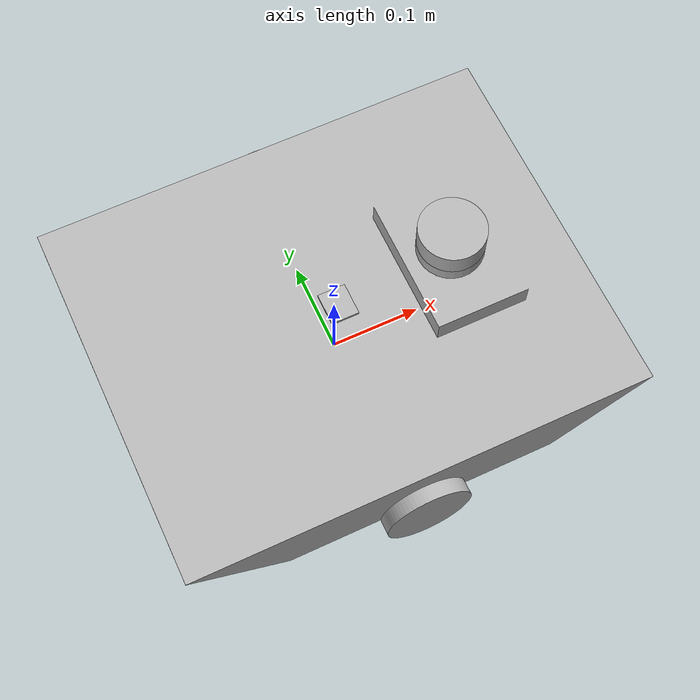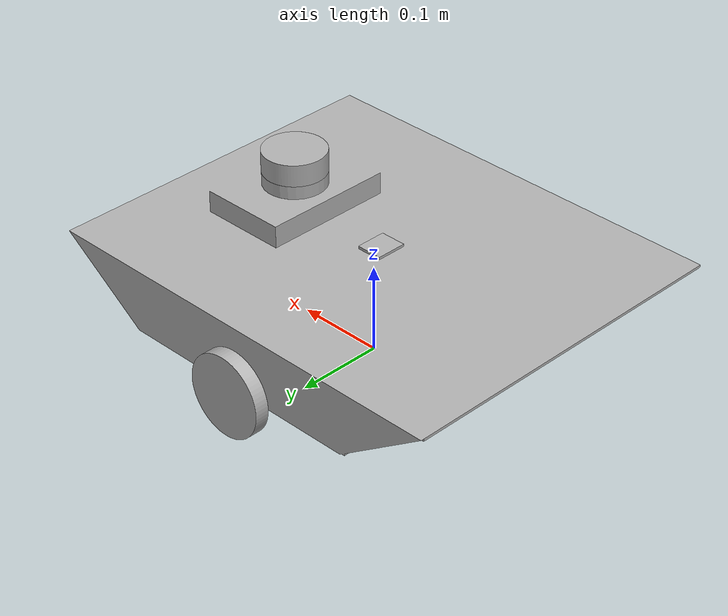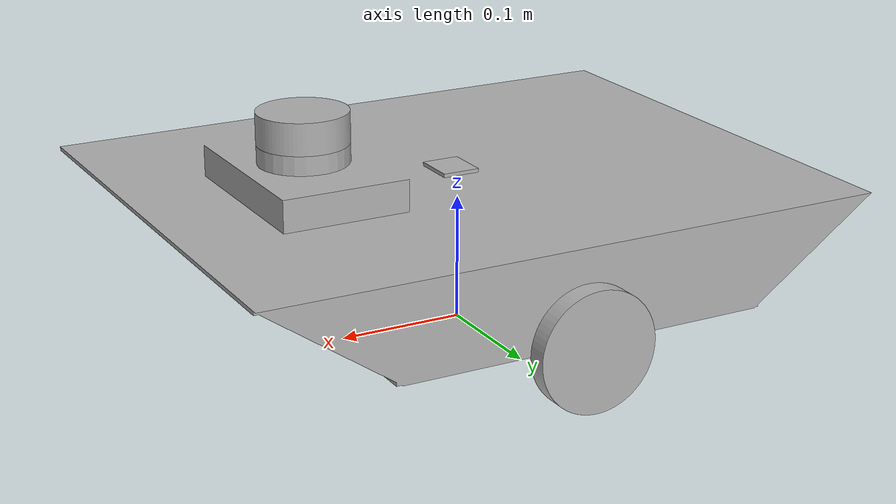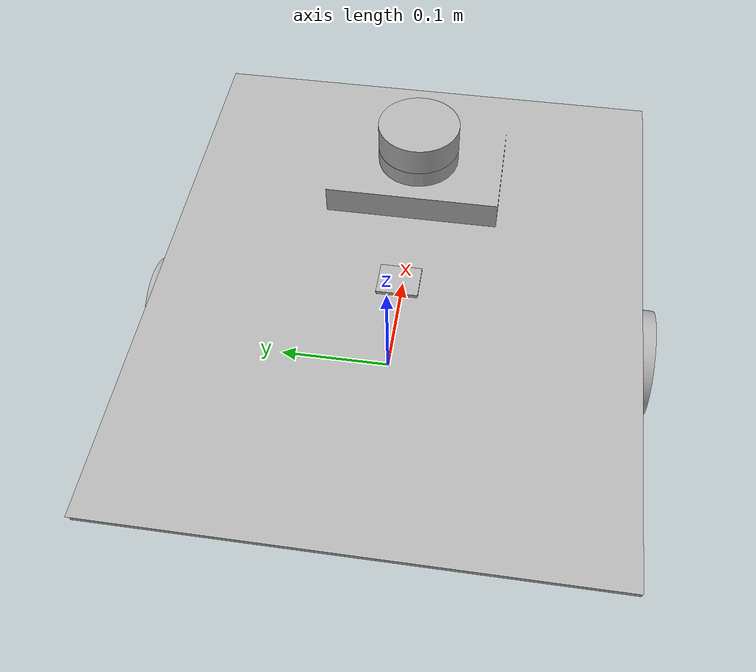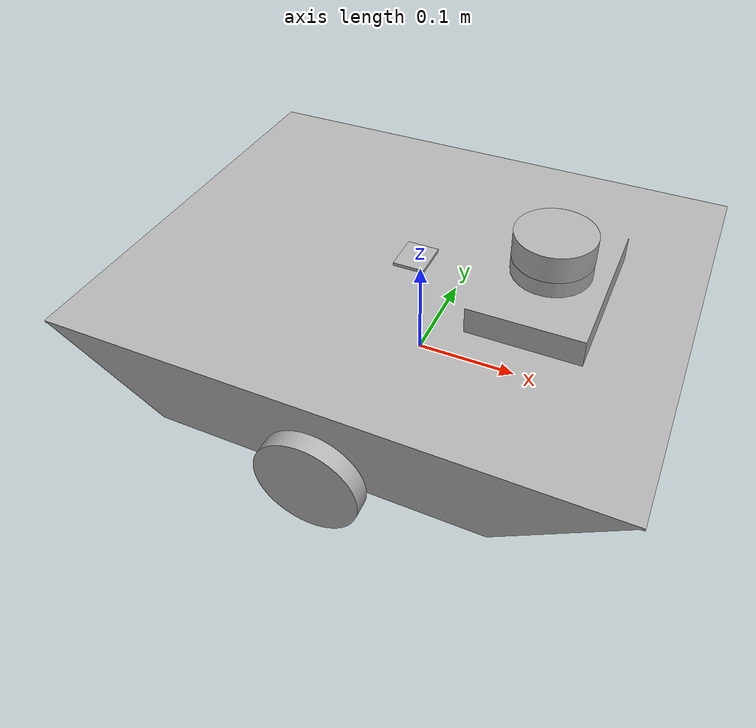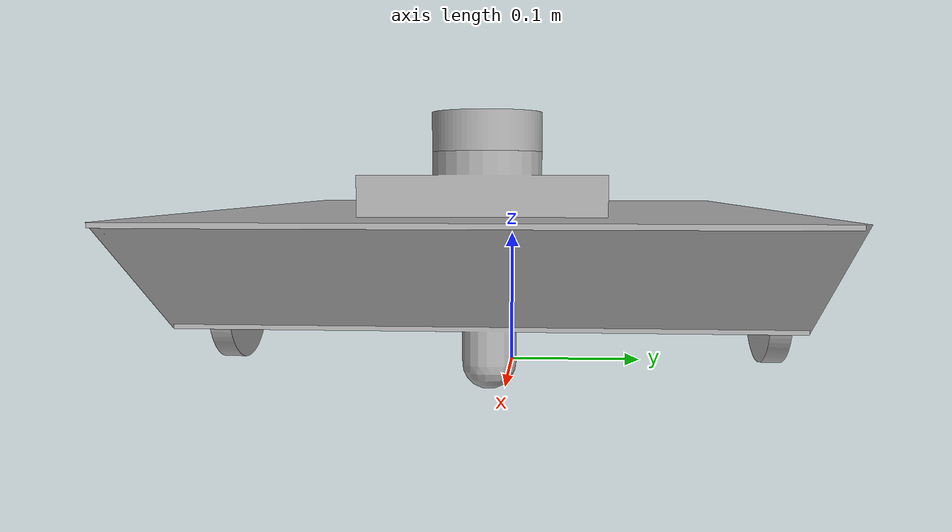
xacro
<?xml version="1.0" ?>
<robot name="urdf-model-v2" xmlns:xacro="http://www.ros.org/wiki/xacro">

<xacro:include filename="$(find urdf-model-v2_description)/urdf/materials.xacro" />
<xacro:include filename="$(find urdf-model-v2_description)/urdf/urdf-model-v2.trans" />
<xacro:include filename="$(find urdf-model-v2_description)/urdf/urdf-model-v2.gazebo" />
<link name="base_link">
  <inertial>
    <origin rpy="0 0 0" xyz="0.02750610135511024 -0.01565851618949415 0.09680298938914317"/>
    <mass value="2.108012963089235"/>
    <inertia ixx="0.031032" ixy="-0.000398" ixz="-0.002171" iyy="0.040587" iyz="-0.000128" izz="0.066435"/>
  </inertial>
  <visual>
    <origin rpy="0 0 0" xyz="0 0 0"/>
    <geometry>
      <mesh filename="package://urdf-model-v2_description/meshes/base_link.stl" scale="0.001 0.001 0.001"/>
    </geometry>
    <material name="silver"/>
  </visual>
  <collision>
    <origin rpy="0 0 0" xyz="0 0 0"/>
    <geometry>
      <mesh filename="package://urdf-model-v2_description/meshes/base_link.stl" scale="0.001 0.001 0.001"/>
    </geometry>
  </collision>
</link>

<link name="left_wheel_1">
  <inertial>
    <origin rpy="0 0 0" xyz="-3.138019803656142e-17 0.00799999999999984 3.885780586188048e-16"/>
    <mass value="0.10107848168254115"/>
    <inertia ixx="5.7e-05" ixy="0.0" ixz="0.0" iyy="0.000109" iyz="0.0" izz="5.7e-05"/>
  </inertial>
  <visual>
    <origin rpy="0 0 0" xyz="0.0 -0.1915 -0.0465"/>
    <geometry>
      <mesh filename="package://urdf-model-v2_description/meshes/left_wheel_1.stl" scale="0.001 0.001 0.001"/>
    </geometry>
    <material name="silver"/>
  </visual>
  <collision>
    <origin rpy="0 0 0" xyz="0.0 -0.1915 -0.0465"/>
    <geometry>
      <mesh filename="package://urdf-model-v2_description/meshes/left_wheel_1.stl" scale="0.001 0.001 0.001"/>
    </geometry>
  </collision>
</link>

<link name="right_wheel_1">
  <inertial>
    <origin rpy="0 0 0" xyz="2.1077518622958504e-07 -0.008000000000000257 3.2612801348363973e-16"/>
    <mass value="0.10107848168254108"/>
    <inertia ixx="5.7e-05" ixy="0.0" ixz="0.0" iyy="0.000109" iyz="0.0" izz="5.7e-05"/>
  </inertial>
  <visual>
    <origin rpy="0 0 0" xyz="-3e-05 0.2125 -0.0465"/>
    <geometry>
      <mesh filename="package://urdf-model-v2_description/meshes/right_wheel_1.stl" scale="0.001 0.001 0.001"/>
    </geometry>
    <material name="silver"/>
  </visual>
  <collision>
    <origin rpy="0 0 0" xyz="-3e-05 0.2125 -0.0465"/>
    <geometry>
      <mesh filename="package://urdf-model-v2_description/meshes/right_wheel_1.stl" scale="0.001 0.001 0.001"/>
    </geometry>
  </collision>
</link>

<link name="lidar_1">
  <inertial>
    <origin rpy="0 0 0" xyz="-4.902873257939255e-07 -6.245004513516506e-17 0.012500000000000039"/>
    <mass value="0.10406525665016182"/>
    <inertia ixx="3.8e-05" ixy="-0.0" ixz="0.0" iyy="3.8e-05" iyz="-0.0" izz="6.5e-05"/>
  </inertial>
  <visual>
    <origin rpy="0 0 0" xyz="-0.125032 0.01 -0.1595"/>
    <geometry>
      <mesh filename="package://urdf-model-v2_description/meshes/lidar_1.stl" scale="0.001 0.001 0.001"/>
    </geometry>
    <material name="silver"/>
  </visual>
  <collision>
    <origin rpy="0 0 0" xyz="-0.125032 0.01 -0.1595"/>
    <geometry>
      <mesh filename="package://urdf-model-v2_description/meshes/lidar_1.stl" scale="0.001 0.001 0.001"/>
    </geometry>
  </collision>
</link>

<link name="imu_1">
  <inertial>
    <origin rpy="0 0 0" xyz="-2.871335190220503e-07 -2.203098814490545e-16 0.001500000000000043"/>
    <mass value="0.0033390000000000078"/>
    <inertia ixx="0.0" ixy="0.0" ixz="-0.0" iyy="0.0" iyz="-0.0" izz="1e-06"/>
  </inertial>
  <visual>
    <origin rpy="0 0 0" xyz="-4.7e-05 0.0105 -0.1195"/>
    <geometry>
      <mesh filename="package://urdf-model-v2_description/meshes/imu_1.stl" scale="0.001 0.001 0.001"/>
    </geometry>
    <material name="silver"/>
  </visual>
  <collision>
    <origin rpy="0 0 0" xyz="-4.7e-05 0.0105 -0.1195"/>
    <geometry>
      <mesh filename="package://urdf-model-v2_description/meshes/imu_1.stl" scale="0.001 0.001 0.001"/>
    </geometry>
  </collision>
</link>

<joint name="Rev10" type="continuous">
  <origin rpy="0 0 0" xyz="0.0 0.1915 0.0465"/>
  <parent link="base_link"/>
  <child link="left_wheel_1"/>
  <axis xyz="-0.0 1.0 0.0"/>
</joint>

<joint name="Rev11" type="continuous">
  <origin rpy="0 0 0" xyz="3e-05 -0.2125 0.0465"/>
  <parent link="base_link"/>
  <child link="right_wheel_1"/>
  <axis xyz="0.0 1.0 -0.0"/>
</joint>

<joint name="Rigid12" type="fixed">
  <origin rpy="0 0 0" xyz="0.125032 -0.01 0.1595"/>
  <parent link="base_link"/>
  <child link="lidar_1"/>
</joint>

<joint name="Rigid13" type="fixed">
  <origin rpy="0 0 0" xyz="4.7e-05 -0.0105 0.1195"/>
  <parent link="base_link"/>
  <child link="imu_1"/>
</joint>

</robot>

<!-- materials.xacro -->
<robot name="urdf-model-v2" xmlns:xacro="http://www.ros.org/wiki/xacro" >

<material name="silver">
  <color rgba="0.700 0.700 0.700 1.000"/>
</material>

</robot>

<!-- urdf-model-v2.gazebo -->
<robot name="urdf-model-v2" xmlns:xacro="http://www.ros.org/wiki/xacro" >

<xacro:property name="body_color" value="Gazebo/Silver" />

<gazebo>
  <plugin filename="libgazebo_ros_control.so" name="control"/>
</gazebo>
<gazebo reference="base_link">
  <material>${body_color}</material>
  <mu1>0.2</mu1>
  <mu2>0.2</mu2>
  <selfCollide>true</selfCollide>
  <gravity>true</gravity>
</gazebo>

<gazebo reference="left_wheel_1">
  <material>${body_color}</material>
  <mu1>1500</mu1>
  <mu2>1500</mu2>
  <selfCollide>true</selfCollide>
</gazebo>

<gazebo reference="right_wheel_1">
  <material>${body_color}</material>
  <mu1>1500</mu1>
  <mu2>1500</mu2>
  <selfCollide>true</selfCollide>
</gazebo>

<gazebo reference="lidar_1">
  <material>${body_color}</material>
  <mu1>0.2</mu1>
  <mu2>0.2</mu2>
  <selfCollide>true</selfCollide>
</gazebo>

<gazebo reference="imu_1">
  <material>${body_color}</material>
  <mu1>0.2</mu1>
  <mu2>0.2</mu2>
  <selfCollide>true</selfCollide>
</gazebo>

<gazebo>
  <plugin name="differential_drive_controller" filename="libgazebo_ros_diff_drive.so">

    <!-- Plugin update rate in Hz -->
    <updateRate>$100</updateRate>

    <!-- Name of left joint, defaults to `left_joint` -->
    <leftJoint>Rev10</leftJoint>

    <!-- Name of right joint, defaults to `right_joint` -->
    <rightJoint>Rev11</rightJoint>

    <!-- The distance from the center of one wheel to the other, in meters, defaults to 0.34 m -->
    <wheelSeparation>0.404</wheelSeparation>

    <!-- Diameter of the wheels, in meters, defaults to 0.15 m -->
    <wheelDiameter>0.093</wheelDiameter>

    <!-- Wheel acceleration, in rad/s^2, defaults to 0.0 rad/s^2 -->
    <wheelAcceleration>1.0</wheelAcceleration>

    <!-- Maximum torque which the wheels can produce, in Nm, defaults to 5 Nm -->
    <wheelTorque>50</wheelTorque>

    <!-- Topic to receive geometry_msgs/Twist message commands, defaults to `cmd_vel` -->
    <commandTopic>cmd_vel</commandTopic>

    <!-- Topic to publish nav_msgs/Odometry messages, defaults to `odom` -->
    <odometryTopic>odom</odometryTopic>

    <!-- Odometry frame, defaults to `odom` -->
    <odometryFrame>nav</odometryFrame>

    <!-- Robot frame to calculate odometry from, defaults to `base_footprint` -->
    <robotBaseFrame>base_footprint</robotBaseFrame>

    <!-- Odometry source, 0 for ENCODER, 1 for WORLD, defaults to WORLD -->
    <odometrySource>1</odometrySource>

    <!-- Set to true to publish transforms for the wheel links, defaults to false -->
    <publishWheelTF>true</publishWheelTF>

    <!-- Set to true to publish transforms for the odometry, defaults to true -->
    <publishOdom>true</publishOdom>

    <!-- Set to true to publish sensor_msgs/JointState on /joint_states for the wheel joints, defaults to false -->
    <publishWheelJointState>true</publishWheelJointState>

    <!-- Set to true to swap right and left wheels, defaults to true -->
    <legacyMode>true</legacyMode>
  </plugin>
</gazebo>

 <!-- hokuyo -->
  <gazebo reference="lidar_1">
    <sensor type="ray" name="head_hokuyo_sensor">
      <pose>0.2245 0.0 0.2 0 0 0</pose>
      <visualize>false</visualize>
      <update_rate>60</update_rate>
      <ray>
        <scan>
          <horizontal>
            <samples>720</samples>
            <resolution>1</resolution>
            <min_angle>-3.141592</min_angle>
            <max_angle>3.141592</max_angle>
          </horizontal>
        </scan>
        <range>
          <min>0.10</min>
          <max>30.0</max>
          <resolution>0.01</resolution>
        </range>
        <noise>
          <type>gaussian</type>
          <mean>0.0</mean>
          <stddev>0.01</stddev>
        </noise>
      </ray>
      <plugin name="gazebo_ros_head_hokuyo_controller" filename="libgazebo_ros_laser.so">
        <topicName>/scan</topicName>
        <frameName>lidar_1</frameName>
      </plugin>
    </sensor>
  </gazebo>

  <gazebo reference="imu_1">
    <gravity>true</gravity>
    <sensor name="imu_sensor" type="imu">
      <always_on>true</always_on>
      <update_rate>100</update_rate>
      <visualize>false</visualize>
      <topic>__default_topic__</topic>
      <plugin filename="libgazebo_ros_imu_sensor.so" name="imu_plugin">
        <topicName>imu</topicName>
        <bodyName>imu_1</bodyName>
        <updateRateHZ>10.0</updateRateHZ>
        <gaussianNoise>0.0</gaussianNoise>
        <xyzOffset>0 0 0</xyzOffset>
        <rpyOffset>0 0 0</rpyOffset>
        <frameName>imu_1</frameName>
        <initialOrientationAsReference>false</initialOrientationAsReference>
      </plugin>
      <pose>-4.7e-05 0.0105 -0.1195</pose>
    </sensor>
  </gazebo>

</robot>
